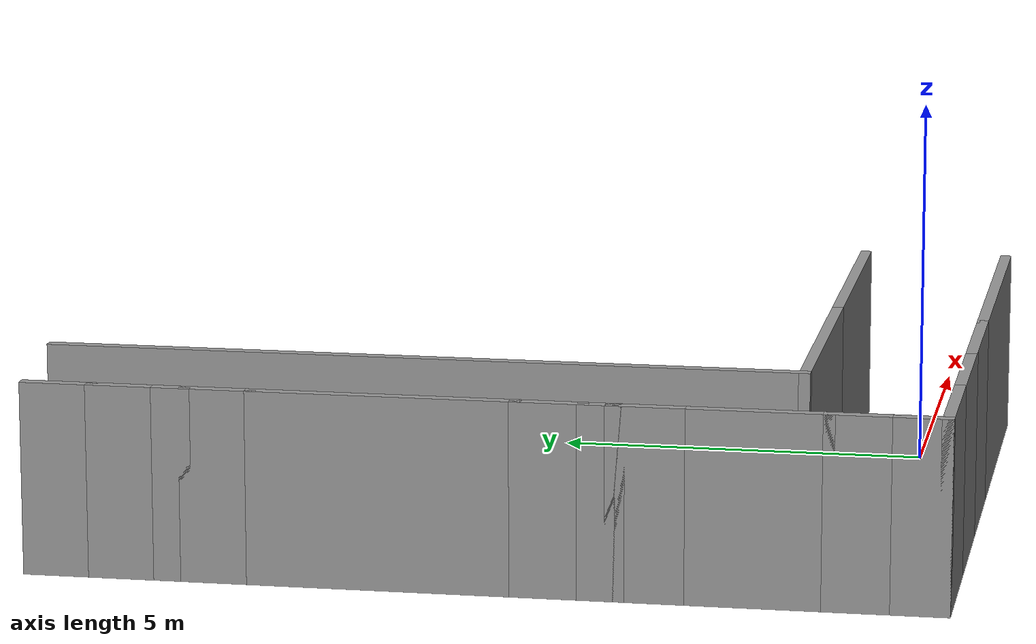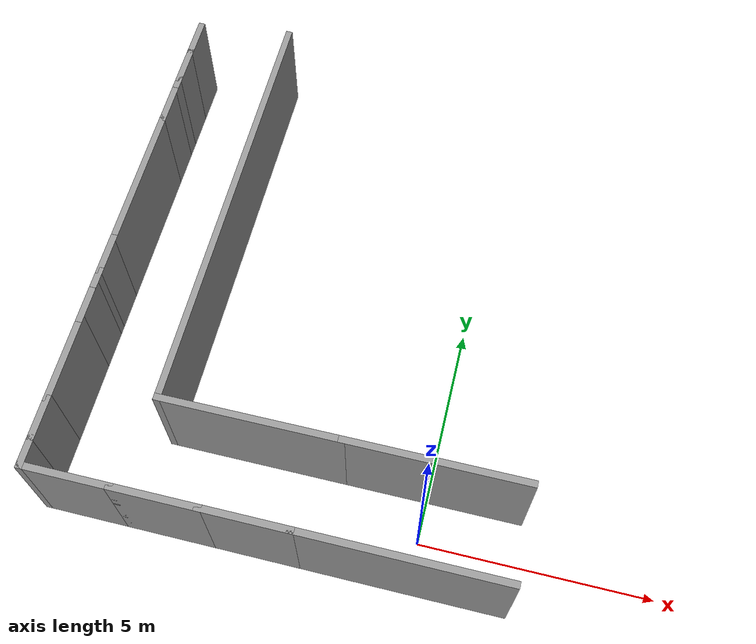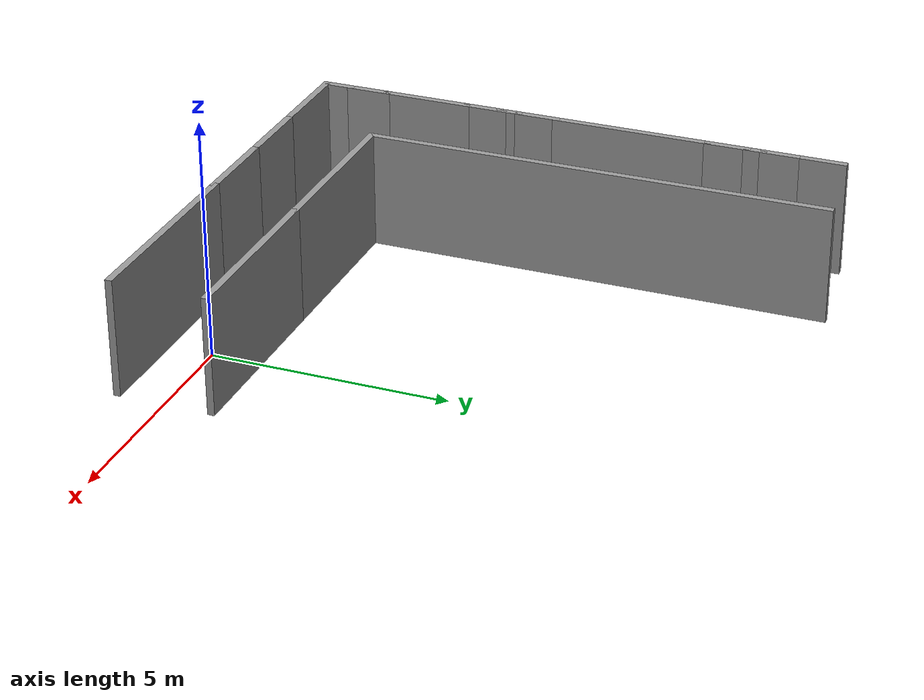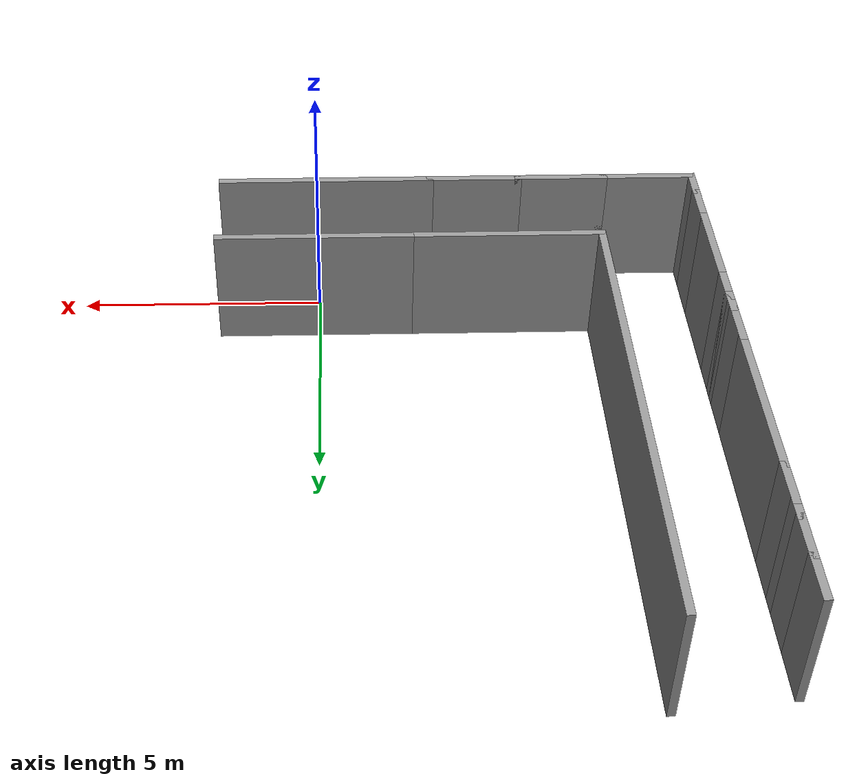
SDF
<?xml version='1.0'?>
<sdf version='1.6'>
  <model name='turtlebot_model_2'>
    <pose frame=''>-2.925 4.925 0 0 -0 0</pose>
    <link name='Wall_0'>
      <collision name='Wall_0_Collision'>
        <geometry>
          <box>
            <size>4 0.15 2.5</size>
          </box>
        </geometry>
        <pose frame=''>0 0 1.25 0 -0 0</pose>
      </collision>
      <visual name='Wall_0_Visual'>
        <pose frame=''>0 0 1.25 0 -0 0</pose>
        <geometry>
          <box>
            <size>4 0.15 2.5</size>
          </box>
        </geometry>
        <material>
          <script>
            <uri>file://media/materials/scripts/gazebo.material</uri>
            <name>Gazebo/Grey</name>
          </script>
          <ambient>1 1 1 1</ambient>
        </material>
        <meta>
          <layer>0</layer>
        </meta>
      </visual>
      <pose frame=''>3 -3.925 0 0 -0 3.14159</pose>
    </link>
    <link name='Wall_20'>
      <collision name='Wall_20_Collision'>
        <geometry>
          <box>
            <size>4 0.15 2.5</size>
          </box>
        </geometry>
        <pose frame=''>0 0 1.25 0 -0 0</pose>
      </collision>
      <visual name='Wall_20_Visual'>
        <pose frame=''>0 0 1.25 0 -0 0</pose>
        <geometry>
          <box>
            <size>4 0.15 2.5</size>
          </box>
        </geometry>
        <material>
          <script>
            <uri>file://media/materials/scripts/gazebo.material</uri>
            <name>Gazebo/Grey</name>
          </script>
          <ambient>1 1 1 1</ambient>
        </material>
        <meta>
          <layer>0</layer>
        </meta>
      </visual>
      <pose frame=''>-0.85 -3.925 0 0 -0 3.14159</pose>
    </link>
    <link name='Wall_29'>
      <collision name='Wall_29_Collision'>
        <geometry>
          <box>
            <size>2 0.15 2.5</size>
          </box>
        </geometry>
        <pose frame=''>0 0 1.25 0 -0 0</pose>
      </collision>
      <visual name='Wall_29_Visual'>
        <pose frame=''>0 0 1.25 0 -0 0</pose>
        <geometry>
          <box>
            <size>2 0.15 2.5</size>
          </box>
        </geometry>
        <material>
          <script>
            <uri>file://media/materials/scripts/gazebo.material</uri>
            <name>Gazebo/Grey</name>
          </script>
          <ambient>1 1 1 1</ambient>
        </material>
        <meta>
          <layer>0</layer>
        </meta>
      </visual>
      <pose frame=''>-0.35 -5.925 0 0 -0 3.14159</pose>
    </link>
    <link name='Wall_4'>
      <collision name='Wall_4_Collision'>
        <geometry>
          <box>
            <size>4.5 0.15 2.5</size>
          </box>
        </geometry>
        <pose frame=''>0 0 1.25 0 -0 0</pose>
      </collision>
      <visual name='Wall_4_Visual'>
        <pose frame=''>0 0 1.25 0 -0 0</pose>
        <geometry>
          <box>
            <size>4.5 0.15 2.5</size>
          </box>
        </geometry>
        <material>
          <script>
            <uri>file://media/materials/scripts/gazebo.material</uri>
            <name>Gazebo/Grey</name>
          </script>
          <ambient>1 1 1 1</ambient>
        </material>
        <meta>
          <layer>0</layer>
        </meta>
      </visual>
      <pose frame=''>2.75 -5.925 0 0 -0 3.14159</pose>
    </link>
    <link name='Wall_41'>
      <collision name='Wall_41_Collision'>
        <geometry>
          <box>
            <size>0.75 0.15 2.5</size>
          </box>
        </geometry>
        <pose frame=''>0 0 1.25 0 -0 0</pose>
      </collision>
      <visual name='Wall_41_Visual'>
        <pose frame=''>0 0 1.25 0 -0 0</pose>
        <geometry>
          <box>
            <size>0.75 0.15 2.5</size>
          </box>
        </geometry>
        <material>
          <script>
            <uri>file://media/materials/scripts/gazebo.material</uri>
            <name>Gazebo/Grey</name>
          </script>
          <ambient>1 1 1 1</ambient>
        </material>
        <meta>
          <layer>0</layer>
        </meta>
      </visual>
      <pose frame=''>-4.925 -5.625 0 0 -0 1.5708</pose>
    </link>
    <link name='Wall_45'>
      <collision name='Wall_45_Collision'>
        <geometry>
          <box>
            <size>10 0.15 2.5</size>
          </box>
        </geometry>
        <pose frame=''>0 0 1.25 0 -0 0</pose>
      </collision>
      <visual name='Wall_45_Visual'>
        <pose frame=''>0 0 1.25 0 -0 0</pose>
        <geometry>
          <box>
            <size>10 0.15 2.5</size>
          </box>
        </geometry>
        <material>
          <script>
            <uri>file://media/materials/scripts/gazebo.material</uri>
            <name>Gazebo/Grey</name>
          </script>
          <ambient>1 1 1 1</ambient>
        </material>
        <meta>
          <layer>0</layer>
        </meta>
      </visual>
      <pose frame=''>-2.775 1 0 0 -0 1.5708</pose>
    </link>
    <link name='Wall_48'>
      <collision name='Wall_48_Collision'>
        <geometry>
          <box>
            <size>0.25 0.15 2.5</size>
          </box>
        </geometry>
        <pose frame=''>0 0 1.25 0 -0 0</pose>
      </collision>
      <visual name='Wall_48_Visual'>
        <pose frame=''>0 0 1.25 0 -0 0</pose>
        <geometry>
          <box>
            <size>0.25 0.15 2.5</size>
          </box>
        </geometry>
        <material>
          <script>
            <uri>file://media/materials/scripts/gazebo.material</uri>
            <name>Gazebo/Grey</name>
          </script>
          <ambient>1 1 1 1</ambient>
        </material>
        <meta>
          <layer>0</layer>
        </meta>
      </visual>
      <pose frame=''>-4.925 -1.825 0 0 -0 1.5708</pose>
    </link>
    <link name='Wall_49'>
      <collision name='Wall_49_Collision'>
        <geometry>
          <box>
            <size>0.5 0.15 2.5</size>
          </box>
        </geometry>
        <pose frame=''>0 0 1.25 0 -0 0</pose>
      </collision>
      <visual name='Wall_49_Visual'>
        <pose frame=''>0 0 1.25 0 -0 0</pose>
        <geometry>
          <box>
            <size>0.5 0.15 2.5</size>
          </box>
        </geometry>
        <material>
          <script>
            <uri>file://media/materials/scripts/gazebo.material</uri>
            <name>Gazebo/Grey</name>
          </script>
          <ambient>1 1 1 1</ambient>
        </material>
        <meta>
          <layer>0</layer>
        </meta>
      </visual>
      <pose frame=''>-4.925 -1.6 0 0 -0 1.5708</pose>
    </link>
    <link name='Wall_50'>
      <collision name='Wall_50_Collision'>
        <geometry>
          <box>
            <size>1 0.15 2.5</size>
          </box>
        </geometry>
        <pose frame=''>0 0 1.25 0 -0 0</pose>
      </collision>
      <visual name='Wall_50_Visual'>
        <pose frame=''>0 0 1.25 0 -0 0</pose>
        <geometry>
          <box>
            <size>1 0.15 2.5</size>
          </box>
        </geometry>
        <material>
          <script>
            <uri>file://media/materials/scripts/gazebo.material</uri>
            <name>Gazebo/Grey</name>
          </script>
          <ambient>1 1 1 1</ambient>
        </material>
        <meta>
          <layer>0</layer>
        </meta>
      </visual>
      <pose frame=''>-4.925 -1 0 0 -0 1.5708</pose>
    </link>
    <link name='Wall_51'>
      <collision name='Wall_51_Collision'>
        <geometry>
          <box>
            <size>3.5 0.15 2.5</size>
          </box>
        </geometry>
        <pose frame=''>0 0 1.25 0 -0 0</pose>
      </collision>
      <visual name='Wall_51_Visual'>
        <pose frame=''>0 0 1.25 0 -0 0</pose>
        <geometry>
          <box>
            <size>3.5 0.15 2.5</size>
          </box>
        </geometry>
        <material>
          <script>
            <uri>file://media/materials/scripts/gazebo.material</uri>
            <name>Gazebo/Grey</name>
          </script>
          <ambient>1 1 1 1</ambient>
        </material>
        <meta>
          <layer>0</layer>
        </meta>
      </visual>
      <pose frame=''>-4.925 1.1 0 0 -0 1.5708</pose>
    </link>
    <link name='Wall_58'>
      <collision name='Wall_58_Collision'>
        <geometry>
          <box>
            <size>1 0.15 2.5</size>
          </box>
        </geometry>
        <pose frame=''>0 0 1.25 0 -0 0</pose>
      </collision>
      <visual name='Wall_58_Visual'>
        <pose frame=''>0 0 1.25 0 -0 0</pose>
        <geometry>
          <box>
            <size>1 0.15 2.5</size>
          </box>
        </geometry>
        <material>
          <script>
            <uri>file://media/materials/scripts/gazebo.material</uri>
            <name>Gazebo/Grey</name>
          </script>
          <ambient>1 1 1 1</ambient>
        </material>
        <meta>
          <layer>0</layer>
        </meta>
      </visual>
      <pose frame=''>-4.925 3.2 0 0 -0 1.5708</pose>
    </link>
    <link name='Wall_59'>
      <collision name='Wall_59_Collision'>
        <geometry>
          <box>
            <size>0.5 0.15 2.5</size>
          </box>
        </geometry>
        <pose frame=''>0 0 1.25 0 -0 0</pose>
      </collision>
      <visual name='Wall_59_Visual'>
        <pose frame=''>0 0 1.25 0 -0 0</pose>
        <geometry>
          <box>
            <size>0.5 0.15 2.5</size>
          </box>
        </geometry>
        <material>
          <script>
            <uri>file://media/materials/scripts/gazebo.material</uri>
            <name>Gazebo/Grey</name>
          </script>
          <ambient>1 1 1 1</ambient>
        </material>
        <meta>
          <layer>0</layer>
        </meta>
      </visual>
      <pose frame=''>-4.925 3.8 0 0 -0 1.5708</pose>
    </link>
    <link name='Wall_60'>
      <collision name='Wall_60_Collision'>
        <geometry>
          <box>
            <size>1 0.15 2.5</size>
          </box>
        </geometry>
        <pose frame=''>0 0 1.25 0 -0 0</pose>
      </collision>
      <visual name='Wall_60_Visual'>
        <pose frame=''>0 0 1.25 0 -0 0</pose>
        <geometry>
          <box>
            <size>1 0.15 2.5</size>
          </box>
        </geometry>
        <material>
          <script>
            <uri>file://media/materials/scripts/gazebo.material</uri>
            <name>Gazebo/Grey</name>
          </script>
          <ambient>1 1 1 1</ambient>
        </material>
        <meta>
          <layer>0</layer>
        </meta>
      </visual>
      <pose frame=''>-4.925 4.4 0 0 -0 1.5708</pose>
    </link>
    <link name='Wall_61'>
      <collision name='Wall_61_Collision'>
        <geometry>
          <box>
            <size>1 0.15 2.5</size>
          </box>
        </geometry>
        <pose frame=''>0 0 1.25 0 -0 0</pose>
      </collision>
      <visual name='Wall_61_Visual'>
        <pose frame=''>0 0 1.25 0 -0 0</pose>
        <geometry>
          <box>
            <size>1 0.15 2.5</size>
          </box>
        </geometry>
        <material>
          <script>
            <uri>file://media/materials/scripts/gazebo.material</uri>
            <name>Gazebo/Grey</name>
          </script>
          <ambient>1 1 1 1</ambient>
        </material>
        <meta>
          <layer>0</layer>
        </meta>
      </visual>
      <pose frame=''>-4.925 5.25 0 0 -0 1.5708</pose>
    </link>
    <link name='Wall_68'>
      <collision name='Wall_68_Collision'>
        <geometry>
          <box>
            <size>1 0.15 2.5</size>
          </box>
        </geometry>
        <pose frame=''>0 0 1.25 0 -0 0</pose>
      </collision>
      <visual name='Wall_68_Visual'>
        <pose frame=''>0 0 1.25 0 -0 0</pose>
        <geometry>
          <box>
            <size>1 0.15 2.5</size>
          </box>
        </geometry>
        <material>
          <script>
            <uri>file://media/materials/scripts/gazebo.material</uri>
            <name>Gazebo/Grey</name>
          </script>
          <ambient>1 1 1 1</ambient>
        </material>
        <meta>
          <layer>0</layer>
        </meta>
      </visual>
      <pose frame=''>-4.925 -4.9 0 0 -0 1.5708</pose>
    </link>
    <link name='Wall_71'>
      <collision name='Wall_71_Collision'>
        <geometry>
          <box>
            <size>1 0.15 2.5</size>
          </box>
        </geometry>
        <pose frame=''>0 0 1.25 0 -0 0</pose>
      </collision>
      <visual name='Wall_71_Visual'>
        <pose frame=''>0 0 1.25 0 -0 0</pose>
        <geometry>
          <box>
            <size>1 0.15 2.5</size>
          </box>
        </geometry>
        <material>
          <script>
            <uri>file://media/materials/scripts/gazebo.material</uri>
            <name>Gazebo/Grey</name>
          </script>
          <ambient>1 1 1 1</ambient>
        </material>
        <meta>
          <layer>0</layer>
        </meta>
      </visual>
      <pose frame=''>-4.925 -2.2 0 0 0 -1.5708</pose>
    </link>
    <link name='Wall_72'>
      <collision name='Wall_72_Collision'>
        <geometry>
          <box>
            <size>2 0.15 2.5</size>
          </box>
        </geometry>
        <pose frame=''>0 0 1.25 0 -0 0</pose>
      </collision>
      <visual name='Wall_72_Visual'>
        <pose frame=''>0 0 1.25 0 -0 0</pose>
        <geometry>
          <box>
            <size>2 0.15 2.5</size>
          </box>
        </geometry>
        <material>
          <script>
            <uri>file://media/materials/scripts/gazebo.material</uri>
            <name>Gazebo/Grey</name>
          </script>
          <ambient>1 1 1 1</ambient>
        </material>
        <meta>
          <layer>0</layer>
        </meta>
      </visual>
      <pose frame=''>-4.925 -3.55 0 0 0 -1.5708</pose>
    </link>
    <link name='Wall_74'>
      <collision name='Wall_74_Collision'>
        <geometry>
          <box>
            <size>2 0.15 2.5</size>
          </box>
        </geometry>
        <pose frame=''>0 0 1.25 0 -0 0</pose>
      </collision>
      <visual name='Wall_74_Visual'>
        <pose frame=''>0 0 1.25 0 -0 0</pose>
        <geometry>
          <box>
            <size>2 0.15 2.5</size>
          </box>
        </geometry>
        <material>
          <script>
            <uri>file://media/materials/scripts/gazebo.material</uri>
            <name>Gazebo/Grey</name>
          </script>
          <ambient>1 1 1 1</ambient>
        </material>
        <meta>
          <layer>0</layer>
        </meta>
      </visual>
      <pose frame=''>-4 -5.925 0 0 -0 0</pose>
    </link>
    <link name='Wall_75'>
      <collision name='Wall_75_Collision'>
        <geometry>
          <box>
            <size>1.95 0.15 2.5</size>
          </box>
        </geometry>
        <pose frame=''>0 0 1.25 0 -0 0</pose>
      </collision>
      <visual name='Wall_75_Visual'>
        <pose frame=''>0 0 1.25 0 -0 0</pose>
        <geometry>
          <box>
            <size>1.95 0.15 2.5</size>
          </box>
        </geometry>
        <material>
          <script>
            <uri>file://media/materials/scripts/gazebo.material</uri>
            <name>Gazebo/Grey</name>
          </script>
          <ambient>1 1 1 1</ambient>
        </material>
        <meta>
          <layer>0</layer>
        </meta>
      </visual>
      <pose frame=''>-2.175 -5.925 0 0 -0 0</pose>
    </link>
    <static>1</static>
  </model>
</sdf>
